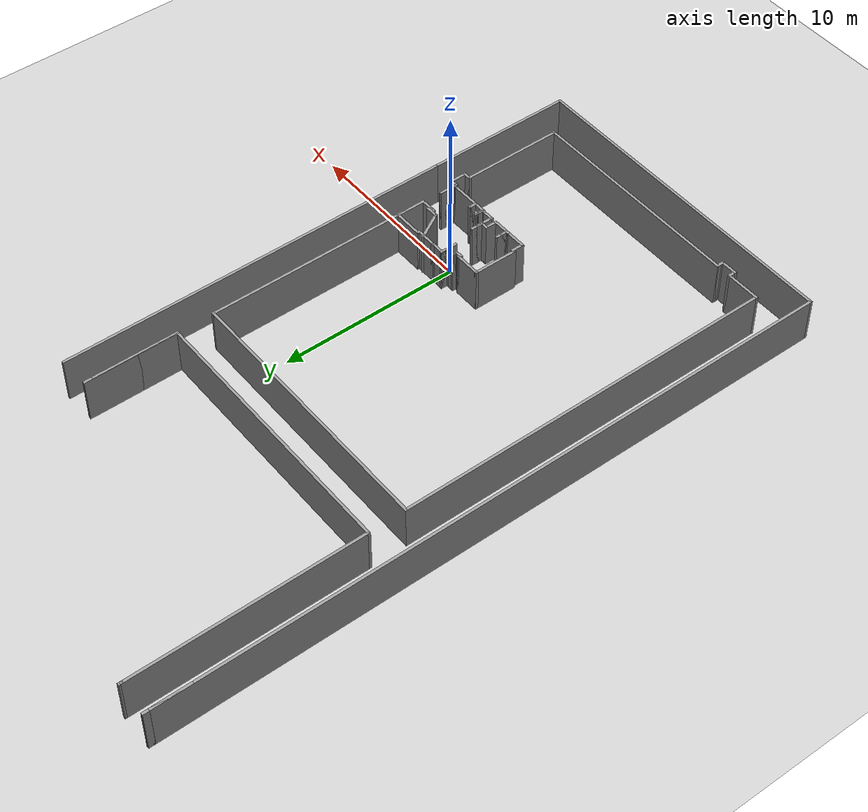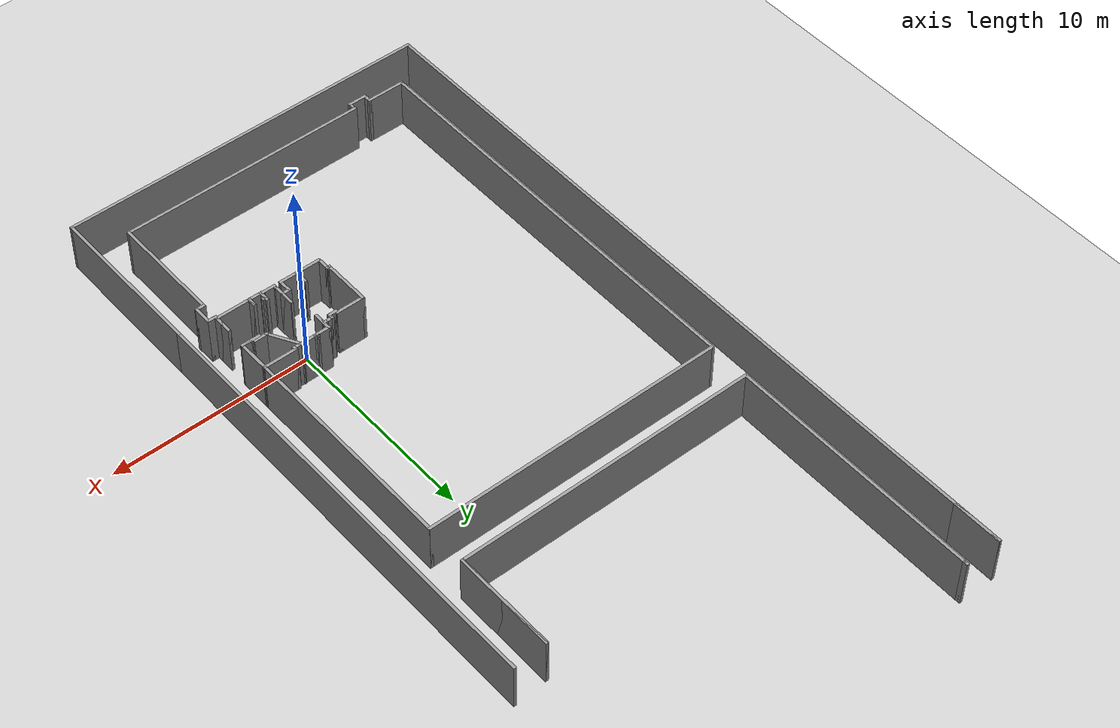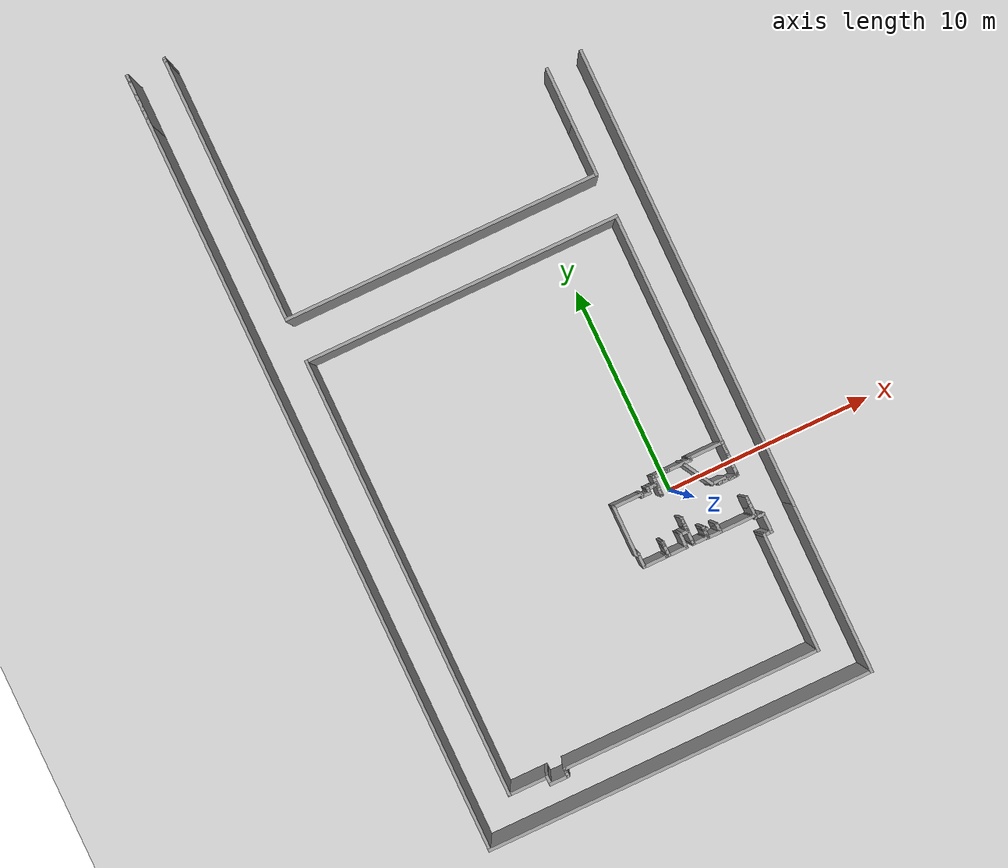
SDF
<sdf version="1.4">
 <world name="default">
  <light name="sun" type="directional">
   <pose>0 0 10 0 -0 0</pose>
   <diffuse>0.8 0.8 0.8 1</diffuse>
   <specular>0.2 0.2 0.2 1</specular>
   <attenuation>
    <range>1000</range>
    <constant>0.9</constant>
    <linear>0.01</linear>
    <quadratic>0.001</quadratic>
   </attenuation>
   <direction>-0.5 0.1 -0.9</direction>
  </light>
  <model name="ground_plane">
   <static>1</static>
   <link name="link">
    <collision name="collision">
     <geometry><plane><normal>0 0 1</normal><size>100 100</size></plane></geometry>
     <surface><friction><ode><mu>100</mu><mu2>50</mu2></ode></friction></surface>
    </collision>
    <visual name="visual">
     <cast_shadows>0</cast_shadows>
     <geometry><plane><normal>0 0 1</normal><size>100 100</size></plane></geometry>
     <material>
      <script><uri>file://media/materials/scripts/gazebo.material</uri><name>Gazebo/Grey</name></script>
     </material>
    </visual>
    <velocity_decay><linear>0</linear><angular>0</angular></velocity_decay>
   </link>
  </model>
  <physics type="ode">
   <max_step_size>0.001</max_step_size>
   <real_time_factor>1</real_time_factor>
   <real_time_update_rate>1000</real_time_update_rate>
   <gravity>0 0 -9.8</gravity>
  </physics>
  <scene><ambient>0.4 0.4 0.4 1</ambient><background>0.7 0.7 0.7 1</background><shadows>1</shadows></scene>
  <spherical_coordinates>
   <surface_model>EARTH_WGS84</surface_model>
   <latitude_deg>0</latitude_deg>
   <longitude_deg>0</longitude_deg>
   <elevation>0</elevation>
   <heading_deg>0</heading_deg>
  </spherical_coordinates>
  <model name="candy_kingdom">
   <pose>-4.8 8 0 0 -0 0</pose>
   <link name="Wall_100">
    <collision name="Wall_100_Collision">
     <geometry><box><size>2.5 0.15 2.5</size></box></geometry>
     <pose>0 0 1.25 0 -0 0</pose>
    </collision>
    <visual name="Wall_100_Visual">
     <pose>0 0 1.25 0 -0 0</pose>
     <geometry><box><size>2.5 0.15 2.5</size></box></geometry>
     <material>
      <script><uri>file://media/materials/scripts/gazebo.material</uri><name>Gazebo/Grey</name></script>
      <ambient>1 1 1 1</ambient>
     </material>
    </visual>
    <pose>-9.3 17.675 0 0 0 -1.5708</pose>
   </link>
   <link name="Wall_102">
    <collision name="Wall_102_Collision">
     <geometry><box><size>0.15 0.15 2.5</size></box></geometry>
     <pose>0 0 1.25 0 -0 0</pose>
    </collision>
    <visual name="Wall_102_Visual">
     <pose>0 0 1.25 0 -0 0</pose>
     <geometry><box><size>0.15 0.15 2.5</size></box></geometry>
     <material>
      <script><uri>file://media/materials/scripts/gazebo.material</uri><name>Gazebo/Grey</name></script>
      <ambient>1 1 1 1</ambient>
     </material>
    </visual>
    <pose>-7.49247 18.7477 0 0 -0 0</pose>
   </link>
   <link name="Wall_103">
    <collision name="Wall_103_Collision">
     <geometry><box><size>0.25 0.15 2.5</size></box></geometry>
     <pose>0 0 1.25 0 -0 0</pose>
    </collision>
    <visual name="Wall_103_Visual">
     <pose>0 0 1.25 0 -0 0</pose>
     <geometry><box><size>0.25 0.15 2.5</size></box></geometry>
     <material>
      <script><uri>file://media/materials/scripts/gazebo.material</uri><name>Gazebo/Grey</name></script>
      <ambient>1 1 1 1</ambient>
     </material>
    </visual>
    <pose>-7.49247 18.7977 0 0 -0 1.5708</pose>
   </link>
   <link name="Wall_12">
    <collision name="Wall_12_Collision">
     <geometry><box><size>2.5 0.15 2.5</size></box></geometry>
     <pose>0 0 1.25 0 -0 0</pose>
    </collision>
    <visual name="Wall_12_Visual">
     <pose>0 0 1.25 0 -0 0</pose>
     <geometry><box><size>2.5 0.15 2.5</size></box></geometry>
     <material>
      <script><uri>file://media/materials/scripts/gazebo.material</uri><name>Gazebo/Grey</name></script>
      <ambient>1 1 1 1</ambient>
     </material>
    </visual>
    <pose>2.07203 -8.6524 0 0 0 -1.5708</pose>
   </link>
   <link name="Wall_13">
    <collision name="Wall_13_Collision">
     <geometry><box><size>0.25 0.15 2.5</size></box></geometry>
     <pose>0 0 1.25 0 -0 0</pose>
    </collision>
    <visual name="Wall_13_Visual">
     <pose>0 0 1.25 0 -0 0</pose>
     <geometry><box><size>0.25 0.15 2.5</size></box></geometry>
     <material>
      <script><uri>file://media/materials/scripts/gazebo.material</uri><name>Gazebo/Grey</name></script>
      <ambient>1 1 1 1</ambient>
     </material>
    </visual>
    <pose>2.12203 -9.8274 0 0 -0 0</pose>
   </link>
   <link name="Wall_14">
    <collision name="Wall_14_Collision">
     <geometry><box><size>0.75 0.15 2.5</size></box></geometry>
     <pose>0 0 1.25 0 -0 0</pose>
    </collision>
    <visual name="Wall_14_Visual">
     <pose>0 0 1.25 0 -0 0</pose>
     <geometry><box><size>0.75 0.15 2.5</size></box></geometry>
     <material>
      <script><uri>file://media/materials/scripts/gazebo.material</uri><name>Gazebo/Grey</name></script>
      <ambient>1 1 1 1</ambient>
     </material>
    </visual>
    <pose>2.17203 -10.1274 0 0 0 -1.5708</pose>
   </link>
   <link name="Wall_15">
    <collision name="Wall_15_Collision">
     <geometry><box><size>1.25 0.15 2.5</size></box></geometry>
     <pose>0 0 1.25 0 -0 0</pose>
    </collision>
    <visual name="Wall_15_Visual">
     <pose>0 0 1.25 0 -0 0</pose>
     <geometry><box><size>1.25 0.15 2.5</size></box></geometry>
     <material>
      <script><uri>file://media/materials/scripts/gazebo.material</uri><name>Gazebo/Grey</name></script>
      <ambient>1 1 1 1</ambient>
     </material>
    </visual>
    <pose>2.72203 -10.4274 0 0 -0 0</pose>
   </link>
   <link name="Wall_16">
    <collision name="Wall_16_Collision">
     <geometry><box><size>0.15 0.15 2.5</size></box></geometry>
     <pose>0 0 1.25 0 -0 0</pose>
    </collision>
    <visual name="Wall_16_Visual">
     <pose>0 0 1.25 0 -0 0</pose>
     <geometry><box><size>0.15 0.15 2.5</size></box></geometry>
     <material>
      <script><uri>file://media/materials/scripts/gazebo.material</uri><name>Gazebo/Grey</name></script>
      <ambient>1 1 1 1</ambient>
     </material>
    </visual>
    <pose>3.27203 -10.4274 0 0 -0 0</pose>
   </link>
   <link name="Wall_17">
    <collision name="Wall_17_Collision">
     <geometry><box><size>0.25 0.15 2.5</size></box></geometry>
     <pose>0 0 1.25 0 -0 0</pose>
    </collision>
    <visual name="Wall_17_Visual">
     <pose>0 0 1.25 0 -0 0</pose>
     <geometry><box><size>0.25 0.15 2.5</size></box></geometry>
     <material>
      <script><uri>file://media/materials/scripts/gazebo.material</uri><name>Gazebo/Grey</name></script>
      <ambient>1 1 1 1</ambient>
     </material>
    </visual>
    <pose>3.32203 -10.4274 0 0 -0 0</pose>
   </link>
   <link name="Wall_18">
    <collision name="Wall_18_Collision">
     <geometry><box><size>0.75 0.15 2.5</size></box></geometry>
     <pose>0 0 1.25 0 -0 0</pose>
    </collision>
    <visual name="Wall_18_Visual">
     <pose>0 0 1.25 0 -0 0</pose>
     <geometry><box><size>0.75 0.15 2.5</size></box></geometry>
     <material>
      <script><uri>file://media/materials/scripts/gazebo.material</uri><name>Gazebo/Grey</name></script>
      <ambient>1 1 1 1</ambient>
     </material>
    </visual>
    <pose>3.37203 -10.1274 0 0 -0 1.5708</pose>
   </link>
   <link name="Wall_19">
    <collision name="Wall_19_Collision">
     <geometry><box><size>0.75 0.15 2.5</size></box></geometry>
     <pose>0 0 1.25 0 -0 0</pose>
    </collision>
    <visual name="Wall_19_Visual">
     <pose>0 0 1.25 0 -0 0</pose>
     <geometry><box><size>0.75 0.15 2.5</size></box></geometry>
     <material>
      <script><uri>file://media/materials/scripts/gazebo.material</uri><name>Gazebo/Grey</name></script>
      <ambient>1 1 1 1</ambient>
     </material>
    </visual>
    <pose>3.37203 -10.1274 0 0 0 -1.5708</pose>
   </link>
   <link name="Wall_20">
    <collision name="Wall_20_Collision">
     <geometry><box><size>1 0.15 2.5</size></box></geometry>
     <pose>0 0 1.25 0 -0 0</pose>
    </collision>
    <visual name="Wall_20_Visual">
     <pose>0 0 1.25 0 -0 0</pose>
     <geometry><box><size>1 0.15 2.5</size></box></geometry>
     <material>
      <script><uri>file://media/materials/scripts/gazebo.material</uri><name>Gazebo/Grey</name></script>
      <ambient>1 1 1 1</ambient>
     </material>
    </visual>
    <pose>3.79703 -10.4274 0 0 -0 0</pose>
   </link>
   <link name="Wall_21">
    <collision name="Wall_21_Collision">
     <geometry><box><size>0.75 0.15 2.5</size></box></geometry>
     <pose>0 0 1.25 0 -0 0</pose>
    </collision>
    <visual name="Wall_21_Visual">
     <pose>0 0 1.25 0 -0 0</pose>
     <geometry><box><size>0.75 0.15 2.5</size></box></geometry>
     <material>
      <script><uri>file://media/materials/scripts/gazebo.material</uri><name>Gazebo/Grey</name></script>
      <ambient>1 1 1 1</ambient>
     </material>
    </visual>
    <pose>4.22203 -10.1274 0 0 -0 1.5708</pose>
   </link>
   <link name="Wall_22">
    <collision name="Wall_22_Collision">
     <geometry><box><size>0.5 0.15 2.5</size></box></geometry>
     <pose>0 0 1.25 0 -0 0</pose>
    </collision>
    <visual name="Wall_22_Visual">
     <pose>0 0 1.25 0 -0 0</pose>
     <geometry><box><size>0.5 0.15 2.5</size></box></geometry>
     <material>
      <script><uri>file://media/materials/scripts/gazebo.material</uri><name>Gazebo/Grey</name></script>
      <ambient>1 1 1 1</ambient>
     </material>
    </visual>
    <pose>4.39703 -9.8274 0 0 -0 0</pose>
   </link>
   <link name="Wall_23">
    <collision name="Wall_23_Collision">
     <geometry><box><size>0.75 0.15 2.5</size></box></geometry>
     <pose>0 0 1.25 0 -0 0</pose>
    </collision>
    <visual name="Wall_23_Visual">
     <pose>0 0 1.25 0 -0 0</pose>
     <geometry><box><size>0.75 0.15 2.5</size></box></geometry>
     <material>
      <script><uri>file://media/materials/scripts/gazebo.material</uri><name>Gazebo/Grey</name></script>
      <ambient>1 1 1 1</ambient>
     </material>
    </visual>
    <pose>4.57203 -9.5274 0 0 -0 1.5708</pose>
   </link>
   <link name="Wall_24">
    <collision name="Wall_24_Collision">
     <geometry><box><size>1.25 0.15 2.5</size></box></geometry>
     <pose>0 0 1.25 0 -0 0</pose>
    </collision>
    <visual name="Wall_24_Visual">
     <pose>0 0 1.25 0 -0 0</pose>
     <geometry><box><size>1.25 0.15 2.5</size></box></geometry>
     <material>
      <script><uri>file://media/materials/scripts/gazebo.material</uri><name>Gazebo/Grey</name></script>
      <ambient>1 1 1 1</ambient>
     </material>
    </visual>
    <pose>4.57203 -9.7774 0 0 0 -1.5708</pose>
   </link>
   <link name="Wall_25">
    <collision name="Wall_25_Collision">
     <geometry><box><size>0.25 0.15 2.5</size></box></geometry>
     <pose>0 0 1.25 0 -0 0</pose>
    </collision>
    <visual name="Wall_25_Visual">
     <pose>0 0 1.25 0 -0 0</pose>
     <geometry><box><size>0.25 0.15 2.5</size></box></geometry>
     <material>
      <script><uri>file://media/materials/scripts/gazebo.material</uri><name>Gazebo/Grey</name></script>
      <ambient>1 1 1 1</ambient>
     </material>
    </visual>
    <pose>4.57203 -10.3774 0 0 0 -1.5708</pose>
   </link>
   <link name="Wall_26">
    <collision name="Wall_26_Collision">
     <geometry><box><size>0.744691 0.15 2.5</size></box></geometry>
     <pose>0 0 1.25 0 -0 0</pose>
    </collision>
    <visual name="Wall_26_Visual">
     <pose>0 0 1.25 0 -0 0</pose>
     <geometry><box><size>0.744691 0.15 2.5</size></box></geometry>
     <material>
      <script><uri>file://media/materials/scripts/gazebo.material</uri><name>Gazebo/Grey</name></script>
      <ambient>1 1 1 1</ambient>
     </material>
    </visual>
    <pose>4.86982 -10.4265 0 0 -0 0.002975</pose>
   </link>
   <link name="Wall_27">
    <collision name="Wall_27_Collision">
     <geometry><box><size>0.24888 0.15 2.5</size></box></geometry>
     <pose>0 0 1.25 0 -0 0</pose>
    </collision>
    <visual name="Wall_27_Visual">
     <pose>0 0 1.25 0 -0 0</pose>
     <geometry><box><size>0.24888 0.15 2.5</size></box></geometry>
     <material>
      <script><uri>file://media/materials/scripts/gazebo.material</uri><name>Gazebo/Grey</name></script>
      <ambient>1 1 1 1</ambient>
     </material>
    </visual>
    <pose>5.2159 -10.4353 0 0 0 -0.215525</pose>
   </link>
   <link name="Wall_28">
    <collision name="Wall_28_Collision">
     <geometry><box><size>0.498256 0.15 2.5</size></box></geometry>
     <pose>0 0 1.25 0 -0 0</pose>
    </collision>
    <visual name="Wall_28_Visual">
     <pose>0 0 1.25 0 -0 0</pose>
     <geometry><box><size>0.498256 0.15 2.5</size></box></geometry>
     <material>
      <script><uri>file://media/materials/scripts/gazebo.material</uri><name>Gazebo/Grey</name></script>
      <ambient>1 1 1 1</ambient>
     </material>
    </visual>
    <pose>5.26641 -10.2727 0 0 -0 1.55808</pose>
   </link>
   <link name="Wall_29">
    <collision name="Wall_29_Collision">
     <geometry><box><size>0.246151 0.15 2.5</size></box></geometry>
     <pose>0 0 1.25 0 -0 0</pose>
    </collision>
    <visual name="Wall_29_Visual">
     <pose>0 0 1.25 0 -0 0</pose>
     <geometry><box><size>0.246151 0.15 2.5</size></box></geometry>
     <material>
      <script><uri>file://media/materials/scripts/gazebo.material</uri><name>Gazebo/Grey</name></script>
      <ambient>1 1 1 1</ambient>
     </material>
    </visual>
    <pose>5.26863 -10.0514 0 0 -0 1.5708</pose>
   </link>
   <link name="Wall_35">
    <collision name="Wall_35_Collision">
     <geometry><box><size>0.25 0.15 2.5</size></box></geometry>
     <pose>0 0 1.25 0 -0 0</pose>
    </collision>
    <visual name="Wall_35_Visual">
     <pose>0 0 1.25 0 -0 0</pose>
     <geometry><box><size>0.25 0.15 2.5</size></box></geometry>
     <material>
      <script><uri>file://media/materials/scripts/gazebo.material</uri><name>Gazebo/Grey</name></script>
      <ambient>1 1 1 1</ambient>
     </material>
    </visual>
    <pose>5.31863 -10.0994 0 0 -0 0</pose>
   </link>
   <link name="Wall_37">
    <collision name="Wall_37_Collision">
     <geometry><box><size>0.497371 0.15 2.5</size></box></geometry>
     <pose>0 0 1.25 0 -0 0</pose>
    </collision>
    <visual name="Wall_37_Visual">
     <pose>0 0 1.25 0 -0 0</pose>
     <geometry><box><size>0.497371 0.15 2.5</size></box></geometry>
     <material>
      <script><uri>file://media/materials/scripts/gazebo.material</uri><name>Gazebo/Grey</name></script>
      <ambient>1 1 1 1</ambient>
     </material>
    </visual>
    <pose>5.26641 -10.2731 0 0 0 -1.58355</pose>
   </link>
   <link name="Wall_38">
    <collision name="Wall_38_Collision">
     <geometry><box><size>0.750019 0.15 2.5</size></box></geometry>
     <pose>0 0 1.25 0 -0 0</pose>
    </collision>
    <visual name="Wall_38_Visual">
     <pose>0 0 1.25 0 -0 0</pose>
     <geometry><box><size>0.750019 0.15 2.5</size></box></geometry>
     <material>
      <script><uri>file://media/materials/scripts/gazebo.material</uri><name>Gazebo/Grey</name></script>
      <ambient>1 1 1 1</ambient>
     </material>
    </visual>
    <pose>5.5642 -10.4515 0 0 0 -0.015798</pose>
   </link>
   <link name="Wall_39">
    <collision name="Wall_39_Collision">
     <geometry><box><size>0.50237 0.15 2.5</size></box></geometry>
     <pose>0 0 1.25 0 -0 0</pose>
    </collision>
    <visual name="Wall_39_Visual">
     <pose>0 0 1.25 0 -0 0</pose>
     <geometry><box><size>0.50237 0.15 2.5</size></box></geometry>
     <material>
      <script><uri>file://media/materials/scripts/gazebo.material</uri><name>Gazebo/Grey</name></script>
      <ambient>1 1 1 1</ambient>
     </material>
    </visual>
    <pose>5.8642 -10.2801 0 0 -0 1.5708</pose>
   </link>
   <link name="Wall_40">
    <collision name="Wall_40_Collision">
     <geometry><box><size>0.5 0.15 2.5</size></box></geometry>
     <pose>0 0 1.25 0 -0 0</pose>
    </collision>
    <visual name="Wall_40_Visual">
     <pose>0 0 1.25 0 -0 0</pose>
     <geometry><box><size>0.5 0.15 2.5</size></box></geometry>
     <material>
      <script><uri>file://media/materials/scripts/gazebo.material</uri><name>Gazebo/Grey</name></script>
      <ambient>1 1 1 1</ambient>
     </material>
    </visual>
    <pose>5.8642 -10.2789 0 0 0 -1.5708</pose>
   </link>
   <link name="Wall_43">
    <collision name="Wall_43_Collision">
     <geometry><box><size>1.75 0.15 2.5</size></box></geometry>
     <pose>0 0 1.25 0 -0 0</pose>
    </collision>
    <visual name="Wall_43_Visual">
     <pose>0 0 1.25 0 -0 0</pose>
     <geometry><box><size>1.75 0.15 2.5</size></box></geometry>
     <material>
      <script><uri>file://media/materials/scripts/gazebo.material</uri><name>Gazebo/Grey</name></script>
      <ambient>1 1 1 1</ambient>
     </material>
    </visual>
    <pose>6.6642 -10.4539 0 0 -0 0</pose>
   </link>
   <link name="Wall_44">
    <collision name="Wall_44_Collision">
     <geometry><box><size>0.15 0.15 2.5</size></box></geometry>
     <pose>0 0 1.25 0 -0 0</pose>
    </collision>
    <visual name="Wall_44_Visual">
     <pose>0 0 1.25 0 -0 0</pose>
     <geometry><box><size>0.15 0.15 2.5</size></box></geometry>
     <material>
      <script><uri>file://media/materials/scripts/gazebo.material</uri><name>Gazebo/Grey</name></script>
      <ambient>1 1 1 1</ambient>
     </material>
    </visual>
    <pose>7.4642 -10.4539 0 0 -0 0</pose>
   </link>
   <link name="Wall_45">
    <collision name="Wall_45_Collision">
     <geometry><box><size>0.25 0.15 2.5</size></box></geometry>
     <pose>0 0 1.25 0 -0 0</pose>
    </collision>
    <visual name="Wall_45_Visual">
     <pose>0 0 1.25 0 -0 0</pose>
     <geometry><box><size>0.25 0.15 2.5</size></box></geometry>
     <material>
      <script><uri>file://media/materials/scripts/gazebo.material</uri><name>Gazebo/Grey</name></script>
      <ambient>1 1 1 1</ambient>
     </material>
    </visual>
    <pose>7.5142 -10.4539 0 0 -0 0</pose>
   </link>
   <link name="Wall_46">
    <collision name="Wall_46_Collision">
     <geometry><box><size>1 0.15 2.5</size></box></geometry>
     <pose>0 0 1.25 0 -0 0</pose>
    </collision>
    <visual name="Wall_46_Visual">
     <pose>0 0 1.25 0 -0 0</pose>
     <geometry><box><size>1 0.15 2.5</size></box></geometry>
     <material>
      <script><uri>file://media/materials/scripts/gazebo.material</uri><name>Gazebo/Grey</name></script>
      <ambient>1 1 1 1</ambient>
     </material>
    </visual>
    <pose>7.5642 -10.0289 0 0 -0 1.5708</pose>
   </link>
   <link name="Wall_47">
    <collision name="Wall_47_Collision">
     <geometry><box><size>1 0.15 2.5</size></box></geometry>
     <pose>0 0 1.25 0 -0 0</pose>
    </collision>
    <visual name="Wall_47_Visual">
     <pose>0 0 1.25 0 -0 0</pose>
     <geometry><box><size>1 0.15 2.5</size></box></geometry>
     <material>
      <script><uri>file://media/materials/scripts/gazebo.material</uri><name>Gazebo/Grey</name></script>
      <ambient>1 1 1 1</ambient>
     </material>
    </visual>
    <pose>7.5642 -10.0289 0 0 0 -1.5708</pose>
   </link>
   <link name="Wall_48">
    <collision name="Wall_48_Collision">
     <geometry><box><size>0.25 0.15 2.5</size></box></geometry>
     <pose>0 0 1.25 0 -0 0</pose>
    </collision>
    <visual name="Wall_48_Visual">
     <pose>0 0 1.25 0 -0 0</pose>
     <geometry><box><size>0.25 0.15 2.5</size></box></geometry>
     <material>
      <script><uri>file://media/materials/scripts/gazebo.material</uri><name>Gazebo/Grey</name></script>
      <ambient>1 1 1 1</ambient>
     </material>
    </visual>
    <pose>7.5642 -10.5039 0 0 0 -1.5708</pose>
   </link>
   <link name="Wall_49">
    <collision name="Wall_49_Collision">
     <geometry><box><size>0.5 0.15 2.5</size></box></geometry>
     <pose>0 0 1.25 0 -0 0</pose>
    </collision>
    <visual name="Wall_49_Visual">
     <pose>0 0 1.25 0 -0 0</pose>
     <geometry><box><size>0.5 0.15 2.5</size></box></geometry>
     <material>
      <script><uri>file://media/materials/scripts/gazebo.material</uri><name>Gazebo/Grey</name></script>
      <ambient>1 1 1 1</ambient>
     </material>
    </visual>
    <pose>7.7392 -10.5539 0 0 -0 0</pose>
   </link>
   <link name="Wall_50">
    <collision name="Wall_50_Collision">
     <geometry><box><size>1 0.15 2.5</size></box></geometry>
     <pose>0 0 1.25 0 -0 0</pose>
    </collision>
    <visual name="Wall_50_Visual">
     <pose>0 0 1.25 0 -0 0</pose>
     <geometry><box><size>1 0.15 2.5</size></box></geometry>
     <material>
      <script><uri>file://media/materials/scripts/gazebo.material</uri><name>Gazebo/Grey</name></script>
      <ambient>1 1 1 1</ambient>
     </material>
    </visual>
    <pose>7.9142 -10.9789 0 0 0 -1.5708</pose>
   </link>
   <link name="Wall_51">
    <collision name="Wall_51_Collision">
     <geometry><box><size>0.5 0.15 2.5</size></box></geometry>
     <pose>0 0 1.25 0 -0 0</pose>
    </collision>
    <visual name="Wall_51_Visual">
     <pose>0 0 1.25 0 -0 0</pose>
     <geometry><box><size>0.5 0.15 2.5</size></box></geometry>
     <material>
      <script><uri>file://media/materials/scripts/gazebo.material</uri><name>Gazebo/Grey</name></script>
      <ambient>1 1 1 1</ambient>
     </material>
    </visual>
    <pose>7.7392 -11.4039 0 0 -0 3.14159</pose>
   </link>
   <link name="Wall_52">
    <collision name="Wall_52_Collision">
     <geometry><box><size>5.75 0.15 2.5</size></box></geometry>
     <pose>0 0 1.25 0 -0 0</pose>
    </collision>
    <visual name="Wall_52_Visual">
     <pose>0 0 1.25 0 -0 0</pose>
     <geometry><box><size>5.75 0.15 2.5</size></box></geometry>
     <material>
      <script><uri>file://media/materials/scripts/gazebo.material</uri><name>Gazebo/Grey</name></script>
      <ambient>1 1 1 1</ambient>
     </material>
    </visual>
    <pose>7.5642 -14.2039 0 0 0 -1.5708</pose>
   </link>
   <link name="Wall_53">
    <collision name="Wall_53_Collision">
     <geometry><box><size>12.5 0.15 2.5</size></box></geometry>
     <pose>0 0 1.25 0 -0 0</pose>
    </collision>
    <visual name="Wall_53_Visual">
     <pose>0 0 1.25 0 -0 0</pose>
     <geometry><box><size>12.5 0.15 2.5</size></box></geometry>
     <material>
      <script><uri>file://media/materials/scripts/gazebo.material</uri><name>Gazebo/Grey</name></script>
      <ambient>1 1 1 1</ambient>
     </material>
    </visual>
    <pose>1.3892 -17.0039 0 0 -0 3.14159</pose>
   </link>
   <link name="Wall_54">
    <collision name="Wall_54_Collision">
     <geometry><box><size>0.25 0.15 2.5</size></box></geometry>
     <pose>0 0 1.25 0 -0 0</pose>
    </collision>
    <visual name="Wall_54_Visual">
     <pose>0 0 1.25 0 -0 0</pose>
     <geometry><box><size>0.25 0.15 2.5</size></box></geometry>
     <material>
      <script><uri>file://media/materials/scripts/gazebo.material</uri><name>Gazebo/Grey</name></script>
      <ambient>1 1 1 1</ambient>
     </material>
    </visual>
    <pose>-4.7858 -17.0539 0 0 0 -1.5708</pose>
   </link>
   <link name="Wall_56">
    <collision name="Wall_56_Collision">
     <geometry><box><size>0.5 0.15 2.5</size></box></geometry>
     <pose>0 0 1.25 0 -0 0</pose>
    </collision>
    <visual name="Wall_56_Visual">
     <pose>0 0 1.25 0 -0 0</pose>
     <geometry><box><size>0.5 0.15 2.5</size></box></geometry>
     <material>
      <script><uri>file://media/materials/scripts/gazebo.material</uri><name>Gazebo/Grey</name></script>
      <ambient>1 1 1 1</ambient>
     </material>
    </visual>
    <pose>-4.7858 -17.1789 0 0 0 -1.5708</pose>
   </link>
   <link name="Wall_57">
    <collision name="Wall_57_Collision">
     <geometry><box><size>1 0.15 2.5</size></box></geometry>
     <pose>0 0 1.25 0 -0 0</pose>
    </collision>
    <visual name="Wall_57_Visual">
     <pose>0 0 1.25 0 -0 0</pose>
     <geometry><box><size>1 0.15 2.5</size></box></geometry>
     <material>
      <script><uri>file://media/materials/scripts/gazebo.material</uri><name>Gazebo/Grey</name></script>
      <ambient>1 1 1 1</ambient>
     </material>
    </visual>
    <pose>-5.2108 -17.3539 0 0 -0 3.14159</pose>
   </link>
   <link name="Wall_58">
    <collision name="Wall_58_Collision">
     <geometry><box><size>0.5 0.15 2.5</size></box></geometry>
     <pose>0 0 1.25 0 -0 0</pose>
    </collision>
    <visual name="Wall_58_Visual">
     <pose>0 0 1.25 0 -0 0</pose>
     <geometry><box><size>0.5 0.15 2.5</size></box></geometry>
     <material>
      <script><uri>file://media/materials/scripts/gazebo.material</uri><name>Gazebo/Grey</name></script>
      <ambient>1 1 1 1</ambient>
     </material>
    </visual>
    <pose>-5.6358 -17.1789 0 0 -0 1.5708</pose>
   </link>
   <link name="Wall_59">
    <collision name="Wall_59_Collision">
     <geometry><box><size>2 0.15 2.5</size></box></geometry>
     <pose>0 0 1.25 0 -0 0</pose>
    </collision>
    <visual name="Wall_59_Visual">
     <pose>0 0 1.25 0 -0 0</pose>
     <geometry><box><size>2 0.15 2.5</size></box></geometry>
     <material>
      <script><uri>file://media/materials/scripts/gazebo.material</uri><name>Gazebo/Grey</name></script>
      <ambient>1 1 1 1</ambient>
     </material>
    </visual>
    <pose>-6.5608 -17.0039 0 0 -0 3.14159</pose>
   </link>
   <link name="Wall_60">
    <collision name="Wall_60_Collision">
     <geometry><box><size>21.25 0.15 2.5</size></box></geometry>
     <pose>0 0 1.25 0 -0 0</pose>
    </collision>
    <visual name="Wall_60_Visual">
     <pose>0 0 1.25 0 -0 0</pose>
     <geometry><box><size>21.25 0.15 2.5</size></box></geometry>
     <material>
      <script><uri>file://media/materials/scripts/gazebo.material</uri><name>Gazebo/Grey</name></script>
      <ambient>1 1 1 1</ambient>
     </material>
    </visual>
    <pose>-7.4858 -6.45389 0 0 -0 1.5708</pose>
   </link>
   <link name="Wall_61">
    <collision name="Wall_61_Collision">
     <geometry><box><size>15.25 0.15 2.5</size></box></geometry>
     <pose>0 0 1.25 0 -0 0</pose>
    </collision>
    <visual name="Wall_61_Visual">
     <pose>0 0 1.25 0 -0 0</pose>
     <geometry><box><size>15.25 0.15 2.5</size></box></geometry>
     <material>
      <script><uri>file://media/materials/scripts/gazebo.material</uri><name>Gazebo/Grey</name></script>
      <ambient>1 1 1 1</ambient>
     </material>
    </visual>
    <pose>0.064197 4.09611 0 0 -0 0</pose>
   </link>
   <link name="Wall_62">
    <collision name="Wall_62_Collision">
     <geometry><box><size>12.75 0.15 2.5</size></box></geometry>
     <pose>0 0 1.25 0 -0 0</pose>
    </collision>
    <visual name="Wall_62_Visual">
     <pose>0 0 1.25 0 -0 0</pose>
     <geometry><box><size>12.75 0.15 2.5</size></box></geometry>
     <material>
      <script><uri>file://media/materials/scripts/gazebo.material</uri><name>Gazebo/Grey</name></script>
      <ambient>1 1 1 1</ambient>
     </material>
    </visual>
    <pose>7.6142 -2.20389 0 0 0 -1.5708</pose>
   </link>
   <link name="Wall_64">
    <collision name="Wall_64_Collision">
     <geometry><box><size>1.5 0.15 2.5</size></box></geometry>
     <pose>0 0 1.25 0 -0 0</pose>
    </collision>
    <visual name="Wall_64_Visual">
     <pose>0 0 1.25 0 -0 0</pose>
     <geometry><box><size>1.5 0.15 2.5</size></box></geometry>
     <material>
      <script><uri>file://media/materials/scripts/gazebo.material</uri><name>Gazebo/Grey</name></script>
      <ambient>1 1 1 1</ambient>
     </material>
    </visual>
    <pose>2.74703 -7.4774 0 0 -0 0</pose>
   </link>
   <link name="Wall_65">
    <collision name="Wall_65_Collision">
     <geometry><box><size>0.25 0.15 2.5</size></box></geometry>
     <pose>0 0 1.25 0 -0 0</pose>
    </collision>
    <visual name="Wall_65_Visual">
     <pose>0 0 1.25 0 -0 0</pose>
     <geometry><box><size>0.25 0.15 2.5</size></box></geometry>
     <material>
      <script><uri>file://media/materials/scripts/gazebo.material</uri><name>Gazebo/Grey</name></script>
      <ambient>1 1 1 1</ambient>
     </material>
    </visual>
    <pose>3.42203 -7.5274 0 0 0 -1.5708</pose>
   </link>
   <link name="Wall_66">
    <collision name="Wall_66_Collision">
     <geometry><box><size>0.5 0.15 2.5</size></box></geometry>
     <pose>0 0 1.25 0 -0 0</pose>
    </collision>
    <visual name="Wall_66_Visual">
     <pose>0 0 1.25 0 -0 0</pose>
     <geometry><box><size>0.5 0.15 2.5</size></box></geometry>
     <material>
      <script><uri>file://media/materials/scripts/gazebo.material</uri><name>Gazebo/Grey</name></script>
      <ambient>1 1 1 1</ambient>
     </material>
    </visual>
    <pose>3.59703 -7.5774 0 0 -0 0</pose>
   </link>
   <link name="Wall_67">
    <collision name="Wall_67_Collision">
     <geometry><box><size>0.25 0.15 2.5</size></box></geometry>
     <pose>0 0 1.25 0 -0 0</pose>
    </collision>
    <visual name="Wall_67_Visual">
     <pose>0 0 1.25 0 -0 0</pose>
     <geometry><box><size>0.25 0.15 2.5</size></box></geometry>
     <material>
      <script><uri>file://media/materials/scripts/gazebo.material</uri><name>Gazebo/Grey</name></script>
      <ambient>1 1 1 1</ambient>
     </material>
    </visual>
    <pose>3.77203 -7.5274 0 0 -0 1.5708</pose>
   </link>
   <link name="Wall_68">
    <collision name="Wall_68_Collision">
     <geometry><box><size>0.25 0.15 2.5</size></box></geometry>
     <pose>0 0 1.25 0 -0 0</pose>
    </collision>
    <visual name="Wall_68_Visual">
     <pose>0 0 1.25 0 -0 0</pose>
     <geometry><box><size>0.25 0.15 2.5</size></box></geometry>
     <material>
      <script><uri>file://media/materials/scripts/gazebo.material</uri><name>Gazebo/Grey</name></script>
      <ambient>1 1 1 1</ambient>
     </material>
    </visual>
    <pose>3.77203 -7.4274 0 0 -0 1.5708</pose>
   </link>
   <link name="Wall_69">
    <collision name="Wall_69_Collision">
     <geometry><box><size>0.5 0.15 2.5</size></box></geometry>
     <pose>0 0 1.25 0 -0 0</pose>
    </collision>
    <visual name="Wall_69_Visual">
     <pose>0 0 1.25 0 -0 0</pose>
     <geometry><box><size>0.5 0.15 2.5</size></box></geometry>
     <material>
      <script><uri>file://media/materials/scripts/gazebo.material</uri><name>Gazebo/Grey</name></script>
      <ambient>1 1 1 1</ambient>
     </material>
    </visual>
    <pose>3.94703 -7.3774 0 0 -0 0</pose>
   </link>
   <link name="Wall_70">
    <collision name="Wall_70_Collision">
     <geometry><box><size>0.25 0.15 2.5</size></box></geometry>
     <pose>0 0 1.25 0 -0 0</pose>
    </collision>
    <visual name="Wall_70_Visual">
     <pose>0 0 1.25 0 -0 0</pose>
     <geometry><box><size>0.25 0.15 2.5</size></box></geometry>
     <material>
      <script><uri>file://media/materials/scripts/gazebo.material</uri><name>Gazebo/Grey</name></script>
      <ambient>1 1 1 1</ambient>
     </material>
    </visual>
    <pose>4.17203 -7.3774 0 0 -0 0</pose>
   </link>
   <link name="Wall_71">
    <collision name="Wall_71_Collision">
     <geometry><box><size>0.5 0.15 2.5</size></box></geometry>
     <pose>0 0 1.25 0 -0 0</pose>
    </collision>
    <visual name="Wall_71_Visual">
     <pose>0 0 1.25 0 -0 0</pose>
     <geometry><box><size>0.5 0.15 2.5</size></box></geometry>
     <material>
      <script><uri>file://media/materials/scripts/gazebo.material</uri><name>Gazebo/Grey</name></script>
      <ambient>1 1 1 1</ambient>
     </material>
    </visual>
    <pose>4.22203 -7.2024 0 0 -0 1.5708</pose>
   </link>
   <link name="Wall_72">
    <collision name="Wall_72_Collision">
     <geometry><box><size>1 0.15 2.5</size></box></geometry>
     <pose>0 0 1.25 0 -0 0</pose>
    </collision>
    <visual name="Wall_72_Visual">
     <pose>0 0 1.25 0 -0 0</pose>
     <geometry><box><size>1 0.15 2.5</size></box></geometry>
     <material>
      <script><uri>file://media/materials/scripts/gazebo.material</uri><name>Gazebo/Grey</name></script>
      <ambient>1 1 1 1</ambient>
     </material>
    </visual>
    <pose>4.22203 -7.4524 0 0 0 -1.5708</pose>
   </link>
   <link name="Wall_73">
    <collision name="Wall_73_Collision">
     <geometry><box><size>1 0.15 2.5</size></box></geometry>
     <pose>0 0 1.25 0 -0 0</pose>
    </collision>
    <visual name="Wall_73_Visual">
     <pose>0 0 1.25 0 -0 0</pose>
     <geometry><box><size>1 0.15 2.5</size></box></geometry>
     <material>
      <script><uri>file://media/materials/scripts/gazebo.material</uri><name>Gazebo/Grey</name></script>
      <ambient>1 1 1 1</ambient>
     </material>
    </visual>
    <pose>4.22203 -7.4524 0 0 -0 1.5708</pose>
   </link>
   <link name="Wall_74">
    <collision name="Wall_74_Collision">
     <geometry><box><size>0.75 0.15 2.5</size></box></geometry>
     <pose>0 0 1.25 0 -0 0</pose>
    </collision>
    <visual name="Wall_74_Visual">
     <pose>0 0 1.25 0 -0 0</pose>
     <geometry><box><size>0.75 0.15 2.5</size></box></geometry>
     <material>
      <script><uri>file://media/materials/scripts/gazebo.material</uri><name>Gazebo/Grey</name></script>
      <ambient>1 1 1 1</ambient>
     </material>
    </visual>
    <pose>4.52203 -7.0274 0 0 -0 0</pose>
   </link>
   <link name="Wall_75">
    <collision name="Wall_75_Collision">
     <geometry><box><size>0.25 0.15 2.5</size></box></geometry>
     <pose>0 0 1.25 0 -0 0</pose>
    </collision>
    <visual name="Wall_75_Visual">
     <pose>0 0 1.25 0 -0 0</pose>
     <geometry><box><size>0.25 0.15 2.5</size></box></geometry>
     <material>
      <script><uri>file://media/materials/scripts/gazebo.material</uri><name>Gazebo/Grey</name></script>
      <ambient>1 1 1 1</ambient>
     </material>
    </visual>
    <pose>4.87203 -7.0274 0 0 -0 0</pose>
   </link>
   <link name="Wall_76">
    <collision name="Wall_76_Collision">
     <geometry><box><size>1.25 0.15 2.5</size></box></geometry>
     <pose>0 0 1.25 0 -0 0</pose>
    </collision>
    <visual name="Wall_76_Visual">
     <pose>0 0 1.25 0 -0 0</pose>
     <geometry><box><size>1.25 0.15 2.5</size></box></geometry>
     <material>
      <script><uri>file://media/materials/scripts/gazebo.material</uri><name>Gazebo/Grey</name></script>
      <ambient>1 1 1 1</ambient>
     </material>
    </visual>
    <pose>5.47203 -7.0274 0 0 -0 0</pose>
   </link>
   <link name="Wall_77">
    <collision name="Wall_77_Collision">
     <geometry><box><size>0.25 0.15 2.5</size></box></geometry>
     <pose>0 0 1.25 0 -0 0</pose>
    </collision>
    <visual name="Wall_77_Visual">
     <pose>0 0 1.25 0 -0 0</pose>
     <geometry><box><size>0.25 0.15 2.5</size></box></geometry>
     <material>
      <script><uri>file://media/materials/scripts/gazebo.material</uri><name>Gazebo/Grey</name></script>
      <ambient>1 1 1 1</ambient>
     </material>
    </visual>
    <pose>6.02203 -6.9774 0 0 -0 1.5708</pose>
   </link>
   <link name="Wall_78">
    <collision name="Wall_78_Collision">
     <geometry><box><size>1.75 0.15 2.5</size></box></geometry>
     <pose>0 0 1.25 0 -0 0</pose>
    </collision>
    <visual name="Wall_78_Visual">
     <pose>0 0 1.25 0 -0 0</pose>
     <geometry><box><size>1.75 0.15 2.5</size></box></geometry>
     <material>
      <script><uri>file://media/materials/scripts/gazebo.material</uri><name>Gazebo/Grey</name></script>
      <ambient>1 1 1 1</ambient>
     </material>
    </visual>
    <pose>6.82203 -6.9274 0 0 -0 0</pose>
   </link>
   <link name="Wall_79">
    <collision name="Wall_79_Collision">
     <geometry><box><size>1.7265 0.15 2.5</size></box></geometry>
     <pose>0 0 1.25 0 -0 0</pose>
    </collision>
    <visual name="Wall_79_Visual">
     <pose>0 0 1.25 0 -0 0</pose>
     <geometry><box><size>1.7265 0.15 2.5</size></box></geometry>
     <material>
      <script><uri>file://media/materials/scripts/gazebo.material</uri><name>Gazebo/Grey</name></script>
      <ambient>1 1 1 1</ambient>
     </material>
    </visual>
    <pose>7.61812 -7.71564 0 0 0 -1.57577</pose>
   </link>
   <link name="Wall_80">
    <collision name="Wall_80_Collision">
     <geometry><box><size>1 0.15 2.5</size></box></geometry>
     <pose>0 0 1.25 0 -0 0</pose>
    </collision>
    <visual name="Wall_80_Visual">
     <pose>0 0 1.25 0 -0 0</pose>
     <geometry><box><size>1 0.15 2.5</size></box></geometry>
     <material>
      <script><uri>file://media/materials/scripts/gazebo.material</uri><name>Gazebo/Grey</name></script>
      <ambient>1 1 1 1</ambient>
     </material>
    </visual>
    <pose>7.1892 -8.50389 0 0 -0 3.14159</pose>
   </link>
   <link name="Wall_81">
    <collision name="Wall_81_Collision">
     <geometry><box><size>1 0.15 2.5</size></box></geometry>
     <pose>0 0 1.25 0 -0 0</pose>
    </collision>
    <visual name="Wall_81_Visual">
     <pose>0 0 1.25 0 -0 0</pose>
     <geometry><box><size>1 0.15 2.5</size></box></geometry>
     <material>
      <script><uri>file://media/materials/scripts/gazebo.material</uri><name>Gazebo/Grey</name></script>
      <ambient>1 1 1 1</ambient>
     </material>
    </visual>
    <pose>7.1892 -8.50389 0 0 -0 0</pose>
   </link>
   <link name="Wall_83">
    <collision name="Wall_83_Collision">
     <geometry><box><size>1.75 0.15 2.5</size></box></geometry>
     <pose>0 0 1.25 0 -0 0</pose>
    </collision>
    <visual name="Wall_83_Visual">
     <pose>0 0 1.25 0 -0 0</pose>
     <geometry><box><size>1.75 0.15 2.5</size></box></geometry>
     <material>
      <script><uri>file://media/materials/scripts/gazebo.material</uri><name>Gazebo/Grey</name></script>
      <ambient>1 1 1 1</ambient>
     </material>
    </visual>
    <pose>6.04882 -7.69609 0 0 0 -1.0472</pose>
   </link>
   <link name="Wall_84">
    <collision name="Wall_84_Collision">
     <geometry><box><size>0.75 0.15 2.5</size></box></geometry>
     <pose>0 0 1.25 0 -0 0</pose>
    </collision>
    <visual name="Wall_84_Visual">
     <pose>0 0 1.25 0 -0 0</pose>
     <geometry><box><size>0.75 0.15 2.5</size></box></geometry>
     <material>
      <script><uri>file://media/materials/scripts/gazebo.material</uri><name>Gazebo/Grey</name></script>
      <ambient>1 1 1 1</ambient>
     </material>
    </visual>
    <pose>6.74883 -8.38891 0 0 -0 0</pose>
   </link>
   <link name="Wall_86">
    <collision name="Wall_86_Collision">
     <geometry><box><size>22.25 0.15 2.5</size></box></geometry>
     <pose>0 0 1.25 0 -0 0</pose>
    </collision>
    <visual name="Wall_86_Visual">
     <pose>0 0 1.25 0 -0 0</pose>
     <geometry><box><size>22.25 0.15 2.5</size></box></geometry>
     <material>
      <script><uri>file://media/materials/scripts/gazebo.material</uri><name>Gazebo/Grey</name></script>
      <ambient>1 1 1 1</ambient>
     </material>
    </visual>
    <pose>9.3 0.300001 0 0 -0 1.5708</pose>
   </link>
   <link name="Wall_90">
    <collision name="Wall_90_Collision">
     <geometry><box><size>5.25 0.15 2.5</size></box></geometry>
     <pose>0 0 1.25 0 -0 0</pose>
    </collision>
    <visual name="Wall_90_Visual">
     <pose>0 0 1.25 0 -0 0</pose>
     <geometry><box><size>5.25 0.15 2.5</size></box></geometry>
     <material>
      <script><uri>file://media/materials/scripts/gazebo.material</uri><name>Gazebo/Grey</name></script>
      <ambient>1 1 1 1</ambient>
     </material>
    </visual>
    <pose>7.60754 8.69766 0 0 -0 1.5708</pose>
   </link>
   <link name="Wall_91">
    <collision name="Wall_91_Collision">
     <geometry><box><size>5.25 0.15 2.5</size></box></geometry>
     <pose>0 0 1.25 0 -0 0</pose>
    </collision>
    <visual name="Wall_91_Visual">
     <pose>0 0 1.25 0 -0 0</pose>
     <geometry><box><size>5.25 0.15 2.5</size></box></geometry>
     <material>
      <script><uri>file://media/materials/scripts/gazebo.material</uri><name>Gazebo/Grey</name></script>
      <ambient>1 1 1 1</ambient>
     </material>
    </visual>
    <pose>7.60754 8.69766 0 0 0 -1.5708</pose>
   </link>
   <link name="Wall_92">
    <collision name="Wall_92_Collision">
     <geometry><box><size>15.25 0.15 2.5</size></box></geometry>
     <pose>0 0 1.25 0 -0 0</pose>
    </collision>
    <visual name="Wall_92_Visual">
     <pose>0 0 1.25 0 -0 0</pose>
     <geometry><box><size>15.25 0.15 2.5</size></box></geometry>
     <material>
      <script><uri>file://media/materials/scripts/gazebo.material</uri><name>Gazebo/Grey</name></script>
      <ambient>1 1 1 1</ambient>
     </material>
    </visual>
    <pose>0.057535 6.14766 0 0 -0 3.14159</pose>
   </link>
   <link name="Wall_93">
    <collision name="Wall_93_Collision">
     <geometry><box><size>12.75 0.15 2.5</size></box></geometry>
     <pose>0 0 1.25 0 -0 0</pose>
    </collision>
    <visual name="Wall_93_Visual">
     <pose>0 0 1.25 0 -0 0</pose>
     <geometry><box><size>12.75 0.15 2.5</size></box></geometry>
     <material>
      <script><uri>file://media/materials/scripts/gazebo.material</uri><name>Gazebo/Grey</name></script>
      <ambient>1 1 1 1</ambient>
     </material>
    </visual>
    <pose>-7.49247 12.4477 0 0 -0 1.5708</pose>
   </link>
   <link name="Wall_95">
    <collision name="Wall_95_Collision">
     <geometry><box><size>8.25 0.15 2.5</size></box></geometry>
     <pose>0 0 1.25 0 -0 0</pose>
    </collision>
    <visual name="Wall_95_Visual">
     <pose>0 0 1.25 0 -0 0</pose>
     <geometry><box><size>8.25 0.15 2.5</size></box></geometry>
     <material>
      <script><uri>file://media/materials/scripts/gazebo.material</uri><name>Gazebo/Grey</name></script>
      <ambient>1 1 1 1</ambient>
     </material>
    </visual>
    <pose>9.3 -14.8 0 0 0 -1.5708</pose>
   </link>
   <link name="Wall_96">
    <collision name="Wall_96_Collision">
     <geometry><box><size>18.75 0.15 2.5</size></box></geometry>
     <pose>0 0 1.25 0 -0 0</pose>
    </collision>
    <visual name="Wall_96_Visual">
     <pose>0 0 1.25 0 -0 0</pose>
     <geometry><box><size>18.75 0.15 2.5</size></box></geometry>
     <material>
      <script><uri>file://media/materials/scripts/gazebo.material</uri><name>Gazebo/Grey</name></script>
      <ambient>1 1 1 1</ambient>
     </material>
    </visual>
    <pose>0 -18.85 0 0 -0 3.14159</pose>
   </link>
   <link name="Wall_97">
    <collision name="Wall_97_Collision">
     <geometry><box><size>37.5 0.15 2.5</size></box></geometry>
     <pose>0 0 1.25 0 -0 0</pose>
    </collision>
    <visual name="Wall_97_Visual">
     <pose>0 0 1.25 0 -0 0</pose>
     <geometry><box><size>37.5 0.15 2.5</size></box></geometry>
     <material>
      <script><uri>file://media/materials/scripts/gazebo.material</uri><name>Gazebo/Grey</name></script>
      <ambient>1 1 1 1</ambient>
     </material>
    </visual>
    <pose>-9.3 -0.174999 0 0 -0 1.5708</pose>
   </link>
   <link name="Wall_99">
    <collision name="Wall_99_Collision">
     <geometry><box><size>0.5 0.15 2.5</size></box></geometry>
     <pose>0 0 1.25 0 -0 0</pose>
    </collision>
    <visual name="Wall_99_Visual">
     <pose>0 0 1.25 0 -0 0</pose>
     <geometry><box><size>0.5 0.15 2.5</size></box></geometry>
     <material>
      <script><uri>file://media/materials/scripts/gazebo.material</uri><name>Gazebo/Grey</name></script>
      <ambient>1 1 1 1</ambient>
     </material>
    </visual>
    <pose>-9.3 18.675 0 0 -0 1.5708</pose>
   </link>
   <static>1</static>
  </model>
 </world>
</sdf>
